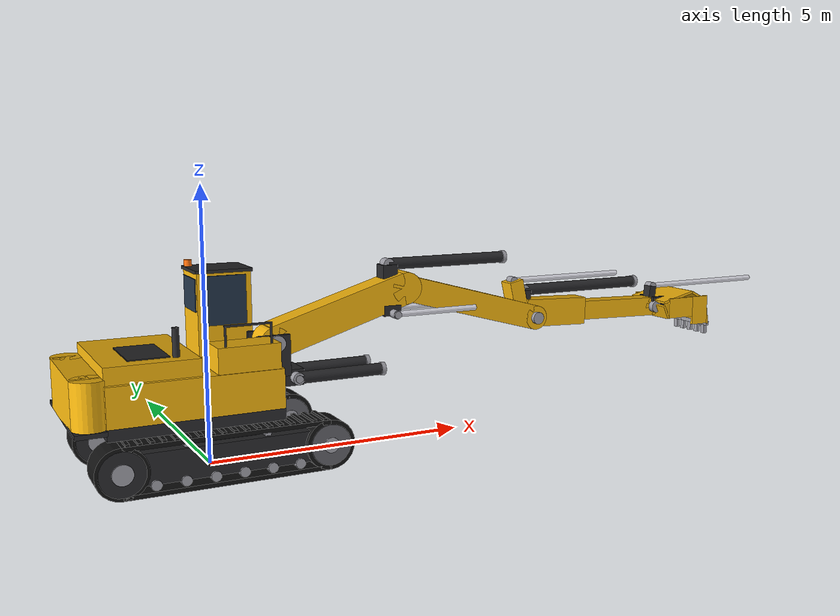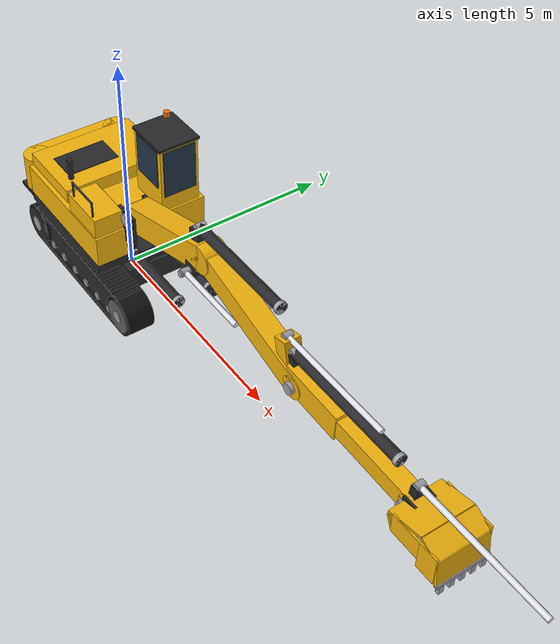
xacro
<?xml version="1.0"?>
<robot name="excavator" xmlns:xacro="http://www.ros.org/wiki/xacro">

  <!-- ===================== Parameters ===================== -->
  <xacro:property name="half_pi" value="${pi/2}"/>

  <!-- undercarriage -->
  <xacro:property name="frame_size_x" value="2.4"/>
  <xacro:property name="frame_size_y" value="1.4"/>
  <xacro:property name="frame_size_z" value="0.5"/>
  <xacro:property name="frame_z" value="0.65"/>
  <xacro:property name="frame_mass" value="6000"/>

  <xacro:property name="track_length" value="3.6"/>  <!-- straight section -->
  <xacro:property name="track_width" value="0.6"/>
  <xacro:property name="track_height" value="0.9"/>
  <xacro:property name="track_offset_y" value="1.05"/>
  <xacro:property name="track_mass" value="2000"/>
  <xacro:property name="belt_thickness" value="0.08"/>

  <xacro:property name="swing_z" value="1.0"/>

  <!-- upper structure (collision / inertia box) -->
  <xacro:property name="house_size_x" value="3.0"/>
  <xacro:property name="house_size_y" value="2.6"/>
  <xacro:property name="house_size_z" value="1.0"/>
  <xacro:property name="house_offset_x" value="-0.5"/>
  <xacro:property name="house_mass" value="7000"/>

  <!-- digging linkage -->
  <xacro:property name="boom_length" value="5.5"/>
  <xacro:property name="boom_width" value="0.5"/>
  <xacro:property name="boom_height" value="0.6"/>
  <xacro:property name="boom_knee_x" value="2.6"/>  <!-- bend of the boom -->
  <xacro:property name="boom_knee_z" value="0.8"/>
  <xacro:property name="boom_mass" value="1800"/>

  <xacro:property name="arm_length" value="3.0"/>
  <xacro:property name="arm_width" value="0.4"/>
  <xacro:property name="arm_height" value="0.45"/>
  <xacro:property name="arm_mass" value="900"/>

  <!-- Backhoe bucket: pins on the back (+Z side), opening faces -Z (towards the
       machine when the arm hangs down). Profile points are (x, z) in the bucket frame. -->
  <xacro:property name="bucket_length" value="1.2"/>   <!-- pivot to cutting edge along X -->
  <xacro:property name="bucket_edge_z" value="-0.42"/> <!-- cutting edge -->
  <xacro:property name="bucket_back_z" value="0.30"/>  <!-- outermost point of the back -->
  <xacro:property name="bucket_width" value="1.1"/>
  <xacro:property name="bucket_plate" value="0.05"/>
  <xacro:property name="bucket_mass" value="700"/>

  <!-- hydraulic cylinders: mounting pins (link frame, XZ) and lengths -->
  <xacro:property name="barrel_radius" value="0.11"/>
  <xacro:property name="rod_radius" value="0.055"/>
  <xacro:property name="boom_cyl_base" value="${[1.45, 0.55]}"/>    <!-- on upper_structure -->
  <xacro:property name="boom_cyl_tip" value="${[2.3, 0.35]}"/>      <!-- on boom -->
  <xacro:property name="boom_cyl_y" value="0.36"/>                  <!-- ± from boom centre -->
  <xacro:property name="boom_cyl_length" value="1.7"/>              <!-- pins 1.78 .. 2.88 m -->
  <xacro:property name="arm_cyl_base" value="${[2.3, 1.25]}"/>      <!-- on boom -->
  <xacro:property name="arm_cyl_tip" value="${[-0.45, 0.76]}"/>     <!-- on arm -->
  <xacro:property name="arm_cyl_length" value="2.55"/>              <!-- pins 2.63 .. 4.32 m -->
  <xacro:property name="bucket_cyl_base" value="${[-0.2, 0.55]}"/>  <!-- on arm -->
  <xacro:property name="bucket_cyl_tip" value="${[0.05, 0.42]}"/>   <!-- on bucket -->
  <xacro:property name="bucket_cyl_length" value="2.8"/>            <!-- pins 2.89 .. 3.67 m -->

  <!-- ===================== Materials ===================== -->
  <material name="yellow"><color rgba="0.96 0.71 0.05 1.0"/></material>
  <material name="dark_grey"><color rgba="0.16 0.16 0.17 1.0"/></material>
  <material name="grey"><color rgba="0.38 0.38 0.40 1.0"/></material>
  <material name="rubber"><color rgba="0.07 0.07 0.07 1.0"/></material>
  <material name="steel"><color rgba="0.62 0.62 0.65 1.0"/></material>
  <material name="chrome"><color rgba="0.88 0.88 0.92 1.0"/></material>
  <material name="glass"><color rgba="0.13 0.20 0.28 1.0"/></material>
  <material name="orange"><color rgba="1.00 0.45 0.05 1.0"/></material>

  <!-- ===================== Macros ===================== -->

  <!-- Solid box inertia, centred at xyz. -->
  <xacro:macro name="box_inertial" params="mass x y z xyz:='0 0 0'">
    <inertial>
      <origin xyz="${xyz}" rpy="0 0 0"/>
      <mass value="${mass}"/>
      <inertia ixx="${mass/12*(y*y + z*z)}" ixy="0" ixz="0"
               iyy="${mass/12*(x*x + z*z)}" iyz="0"
               izz="${mass/12*(x*x + y*y)}"/>
    </inertial>
  </xacro:macro>

  <xacro:macro name="box_collision" params="x y z xyz:='0 0 0'">
    <collision>
      <origin xyz="${xyz}" rpy="0 0 0"/>
      <geometry><box size="${x} ${y} ${z}"/></geometry>
    </collision>
  </xacro:macro>

  <xacro:macro name="box_visual" params="x y z material xyz:='0 0 0'">
    <visual>
      <origin xyz="${xyz}" rpy="0 0 0"/>
      <geometry><box size="${x} ${y} ${z}"/></geometry>
      <material name="${material}"/>
    </visual>
  </xacro:macro>

  <!-- Vertical cylinder (along Z). -->
  <xacro:macro name="post_visual" params="radius length material xyz">
    <visual>
      <origin xyz="${xyz}" rpy="0 0 0"/>
      <geometry><cylinder radius="${radius}" length="${length}"/></geometry>
      <material name="${material}"/>
    </visual>
  </xacro:macro>

  <!-- Cylinder lying along Y (pins, wheels, bosses). -->
  <xacro:macro name="pin_visual" params="radius length material xyz:='0 0 0'">
    <visual>
      <origin xyz="${xyz}" rpy="${half_pi} 0 0"/>
      <geometry><cylinder radius="${radius}" length="${length}"/></geometry>
      <material name="${material}"/>
    </visual>
  </xacro:macro>

  <!-- Box spanning two points in the XZ plane (w = Y size, h = thickness). -->
  <xacro:macro name="beam" params="x1 z1 x2 z2 w h material y:=0">
    <visual>
      <origin xyz="${(x1 + x2)/2} ${y} ${(z1 + z2)/2}" rpy="0 ${-atan2(z2 - z1, x2 - x1)} 0"/>
      <geometry><box size="${sqrt((x2 - x1)**2 + (z2 - z1)**2)} ${w} ${h}"/></geometry>
      <material name="${material}"/>
    </visual>
  </xacro:macro>

  <!-- Cylinder spanning two points in the XZ plane. -->
  <xacro:macro name="rod" params="x1 z1 x2 z2 radius material y:=0">
    <visual>
      <origin xyz="${(x1 + x2)/2} ${y} ${(z1 + z2)/2}" rpy="0 ${atan2(x2 - x1, z2 - z1)} 0"/>
      <geometry><cylinder radius="${radius}" length="${sqrt((x2 - x1)**2 + (z2 - z1)**2)}"/></geometry>
      <material name="${material}"/>
    </visual>
  </xacro:macro>

  <!-- Hydraulic cylinder between a pin on `base` and a pin on `tip` (pins are [x, z]).
       Each link's +X points at the opposite pin; TF comes from excavator_hydraulics. -->
  <xacro:macro name="hydraulic_cylinder" params="name base base_pin tip tip_pin length base_y:=0 tip_y:=0">
    <link name="${name}_barrel">
      <visual>
        <origin xyz="${length/2} 0 0" rpy="0 ${half_pi} 0"/>
        <geometry><cylinder radius="${barrel_radius}" length="${length}"/></geometry>
        <material name="dark_grey"/>
      </visual>
      <visual>
        <origin xyz="${length - 0.04} 0 0" rpy="0 ${half_pi} 0"/>
        <geometry><cylinder radius="${barrel_radius + 0.015}" length="0.08"/></geometry>
        <material name="steel"/>
      </visual>
      <xacro:pin_visual radius="${barrel_radius}" length="0.2" material="steel"/>
    </link>
    <joint name="${name}_barrel_joint" type="floating">
      <parent link="${base}"/>
      <child link="${name}_barrel"/>
      <origin xyz="${base_pin[0]} ${base_y} ${base_pin[1]}" rpy="0 0 0"/>
    </joint>

    <link name="${name}_rod">
      <visual>
        <origin xyz="${length/2} 0 0" rpy="0 ${half_pi} 0"/>
        <geometry><cylinder radius="${rod_radius}" length="${length}"/></geometry>
        <material name="chrome"/>
      </visual>
      <xacro:pin_visual radius="0.08" length="0.18" material="steel"/>
    </link>
    <joint name="${name}_rod_joint" type="floating">
      <parent link="${tip}"/>
      <child link="${name}_rod"/>
      <origin xyz="${tip_pin[0]} ${tip_y} ${tip_pin[1]}" rpy="0 0 0"/>
    </joint>
  </xacro:macro>

  <!-- n boxes in a row along X, starting at x0 with spacing dx. -->
  <xacro:macro name="box_row" params="n x0 dx sx sy sz z material">
    <xacro:if value="${n > 0}">
      <xacro:box_visual x="${sx}" y="${sy}" z="${sz}" material="${material}" xyz="${x0} 0 ${z}"/>
      <xacro:box_row n="${n - 1}" x0="${x0 + dx}" dx="${dx}" sx="${sx}" sy="${sy}" sz="${sz}"
                     z="${z}" material="${material}"/>
    </xacro:if>
  </xacro:macro>

  <!-- n Y-axis cylinders in a row along X (track rollers). -->
  <xacro:macro name="roller_row" params="n x0 dx radius length z">
    <xacro:if value="${n > 0}">
      <xacro:pin_visual radius="${radius}" length="${length}" material="steel" xyz="${x0} 0 ${z}"/>
      <xacro:roller_row n="${n - 1}" x0="${x0 + dx}" dx="${dx}" radius="${radius}"
                        length="${length}" z="${z}"/>
    </xacro:if>
  </xacro:macro>

  <!-- Track: belt with shoes, sprocket, idler and rollers. side = left | right, reflect = 1 | -1 -->
  <xacro:macro name="track" params="side reflect">
    <xacro:property name="r" value="${track_height/2}"/>
    <link name="${side}_track">
      <!-- belt -->
      <xacro:box_visual x="${track_length}" y="${track_width}" z="${belt_thickness}" material="rubber"
                        xyz="0 0 ${r - belt_thickness/2}"/>
      <xacro:box_visual x="${track_length}" y="${track_width}" z="${belt_thickness}" material="rubber"
                        xyz="0 0 ${-r + belt_thickness/2}"/>
      <xacro:pin_visual radius="${r}" length="${track_width}" material="rubber" xyz="${track_length/2} 0 0"/>
      <xacro:pin_visual radius="${r}" length="${track_width}" material="rubber" xyz="${-track_length/2} 0 0"/>
      <!-- track shoes (grousers) on top run -->
      <xacro:box_row n="18" x0="${-track_length/2 + 0.1}" dx="0.2" sx="0.07" sy="${track_width}" sz="0.04"
                     z="${r + 0.02}" material="rubber"/>
      <!-- idler (front) and drive sprocket (rear) -->
      <xacro:pin_visual radius="${r - 0.08}" length="${track_width + 0.04}" material="grey"
                        xyz="${track_length/2} 0 0"/>
      <xacro:pin_visual radius="${r - 0.06}" length="${track_width + 0.04}" material="dark_grey"
                        xyz="${-track_length/2} 0 0"/>
      <xacro:pin_visual radius="0.14" length="${track_width + 0.08}" material="steel"
                        xyz="${track_length/2} 0 0"/>
      <xacro:pin_visual radius="0.18" length="${track_width + 0.08}" material="steel"
                        xyz="${-track_length/2} 0 0"/>
      <!-- track frame -->
      <xacro:box_visual x="${track_length - 0.1}" y="${track_width - 0.16}" z="0.55" material="dark_grey"/>
      <!-- bottom and carrier rollers -->
      <xacro:roller_row n="6" x0="-1.25" dx="0.5" radius="0.09" length="${track_width - 0.1}"
                        z="${-r + belt_thickness + 0.09}"/>
      <xacro:roller_row n="2" x0="-0.7" dx="1.4" radius="0.06" length="0.3"
                        z="${r - belt_thickness - 0.06}"/>

      <xacro:box_collision x="${track_length + track_height}" y="${track_width}" z="${track_height}"/>
      <xacro:box_inertial mass="${track_mass}"
                          x="${track_length + track_height}" y="${track_width}" z="${track_height}"/>
    </link>

    <joint name="${side}_track_joint" type="fixed">
      <parent link="base_link"/>
      <child link="${side}_track"/>
      <origin xyz="0 ${reflect*track_offset_y} ${track_height/2}" rpy="0 0 0"/>
    </joint>
  </xacro:macro>

  <!-- Revolute pitch joint; positive angle raises the child link. -->
  <xacro:macro name="pitch_joint" params="name parent child xyz lower upper effort velocity">
    <joint name="${name}" type="revolute">
      <parent link="${parent}"/>
      <child link="${child}"/>
      <origin xyz="${xyz}" rpy="0 0 0"/>
      <axis xyz="0 -1 0"/>
      <limit lower="${lower}" upper="${upper}" effort="${effort}" velocity="${velocity}"/>
    </joint>
  </xacro:macro>

  <!-- Bucket tooth at lateral position y, pointing out of the cutting edge (-Z). -->
  <xacro:macro name="tooth" params="y">
    <xacro:box_visual x="0.08" y="0.1" z="0.2" material="steel"
                      xyz="${bucket_length} ${y} ${bucket_edge_z - 0.12}"/>
  </xacro:macro>

  <!-- ===================== Undercarriage ===================== -->
  <!-- Inertia-free root link (KDL does not support inertia on the root). -->
  <link name="base_footprint"/>

  <joint name="base_footprint_joint" type="fixed">
    <parent link="base_footprint"/>
    <child link="base_link"/>
    <origin xyz="0 0 0" rpy="0 0 0"/>
  </joint>

  <link name="base_link">
    <!-- centre body and cross members to the tracks -->
    <xacro:box_visual x="${frame_size_x}" y="${frame_size_y}" z="${frame_size_z}"
                      material="dark_grey" xyz="0 0 ${frame_z}"/>
    <xacro:box_visual x="1.2" y="${2*track_offset_y}" z="0.3" material="dark_grey" xyz="0 0 0.6"/>
    <!-- slewing ring -->
    <xacro:post_visual radius="0.85" length="0.1" material="grey" xyz="0 0 0.95"/>

    <xacro:box_collision x="${frame_size_x}" y="${frame_size_y}" z="${frame_size_z}" xyz="0 0 ${frame_z}"/>
    <xacro:box_inertial mass="${frame_mass}" x="${frame_size_x}" y="${frame_size_y}" z="${frame_size_z}"
                        xyz="0 0 ${frame_z}"/>
  </link>

  <xacro:track side="left" reflect="1"/>
  <xacro:track side="right" reflect="-1"/>

  <!-- ===================== Upper structure (house) ===================== -->
  <link name="upper_structure">
    <!-- deck skirt and body -->
    <xacro:box_visual x="${house_size_x}" y="${house_size_y}" z="0.2" material="dark_grey"
                      xyz="${house_offset_x} 0 0.1"/>
    <xacro:box_visual x="${house_size_x}" y="${house_size_y}" z="0.7" material="yellow"
                      xyz="${house_offset_x} 0 0.55"/>
    <!-- engine hood with vent -->
    <xacro:box_visual x="1.6" y="2.4" z="0.3" material="yellow" xyz="-1.2 0 1.05"/>
    <xacro:box_visual x="0.7" y="1.2" z="0.02" material="dark_grey" xyz="-1.2 -0.3 1.21"/>
    <!-- counterweight, rounded at the rear corners -->
    <xacro:box_visual x="0.5" y="2.0" z="0.9" material="yellow" xyz="-2.25 0 0.55"/>
    <xacro:post_visual radius="0.3" length="0.9" material="yellow" xyz="-2.2 1.0 0.55"/>
    <xacro:post_visual radius="0.3" length="0.9" material="yellow" xyz="-2.2 -1.0 0.55"/>
    <xacro:box_visual x="0.52" y="2.62" z="0.08" material="dark_grey" xyz="-2.24 0 0.14"/>
    <!-- exhaust stack -->
    <xacro:post_visual radius="0.06" length="0.5" material="dark_grey" xyz="-0.75 -0.9 1.45"/>

    <!-- cab -->
    <xacro:box_visual x="1.0" y="0.9" z="1.5" material="yellow" xyz="0.45 0.75 1.65"/>
    <xacro:box_visual x="0.02" y="0.76" z="1.1" material="glass" xyz="0.96 0.75 1.8"/>
    <xacro:box_visual x="0.8" y="0.02" z="0.9" material="glass" xyz="0.45 1.21 1.9"/>
    <xacro:box_visual x="0.8" y="0.02" z="0.9" material="glass" xyz="0.45 0.29 1.9"/>
    <xacro:box_visual x="0.02" y="0.76" z="0.6" material="glass" xyz="-0.06 0.75 2.0"/>
    <xacro:box_visual x="1.06" y="0.96" z="0.06" material="dark_grey" xyz="0.45 0.75 2.43"/>
    <xacro:post_visual radius="0.07" length="0.12" material="orange" xyz="0.0 1.05 2.52"/>

    <!-- tool box / fuel tank with handrail, front right -->
    <xacro:box_visual x="1.1" y="0.65" z="0.45" material="yellow" xyz="0.4 -0.95 1.125"/>
    <xacro:post_visual radius="0.02" length="0.35" material="dark_grey" xyz="0.0 -1.22 1.525"/>
    <xacro:post_visual radius="0.02" length="0.35" material="dark_grey" xyz="0.8 -1.22 1.525"/>
    <xacro:rod x1="-0.02" z1="1.7" x2="0.82" z2="1.7" radius="0.02" material="dark_grey" y="-1.22"/>

    <!-- boom foot brackets -->
    <xacro:box_visual x="0.6" y="0.08" z="0.75" material="dark_grey" xyz="1.05 -0.01 0.975"/>
    <xacro:box_visual x="0.6" y="0.08" z="0.75" material="dark_grey" xyz="1.05 -0.59 0.975"/>
    <!-- boom cylinder base bracket -->
    <xacro:box_visual x="0.6" y="0.6" z="0.3" material="dark_grey" xyz="1.3 -0.3 0.55"/>
    <xacro:pin_visual radius="0.07" length="${2*boom_cyl_y + 0.25}" material="steel"
                      xyz="${boom_cyl_base[0]} -0.3 ${boom_cyl_base[1]}"/>

    <xacro:box_collision x="${house_size_x}" y="${house_size_y}" z="${house_size_z}"
                         xyz="${house_offset_x} 0 ${house_size_z/2}"/>
    <xacro:box_inertial mass="${house_mass}" x="${house_size_x}" y="${house_size_y}" z="${house_size_z}"
                        xyz="${house_offset_x} 0 ${house_size_z/2}"/>
  </link>

  <!-- continuous: the upper structure can swing all the way round -->
  <joint name="swing_joint" type="continuous">
    <parent link="base_link"/>
    <child link="upper_structure"/>
    <origin xyz="0 0 ${swing_z}" rpy="0 0 0"/>
    <axis xyz="0 0 1"/>
    <limit effort="50000" velocity="1.0"/>
  </joint>

  <!-- ===================== Boom ===================== -->
  <link name="boom">
    <!-- bent (banana) boom: foot → knee → tip -->
    <xacro:beam x1="0" z1="0" x2="${boom_knee_x}" z2="${boom_knee_z}"
                w="${boom_width}" h="${boom_height}" material="yellow"/>
    <xacro:beam x1="${boom_knee_x}" z1="${boom_knee_z}" x2="${boom_length}" z2="0"
                w="${boom_width - 0.05}" h="${boom_height - 0.12}" material="yellow"/>
    <xacro:pin_visual radius="0.3" length="${boom_width}" material="yellow"
                      xyz="${boom_knee_x} 0 ${boom_knee_z}"/>
    <xacro:pin_visual radius="0.28" length="${boom_width}" material="yellow"/>
    <xacro:pin_visual radius="0.15" length="0.75" material="steel"/>
    <xacro:pin_visual radius="0.24" length="${boom_width - 0.05}" material="yellow"
                      xyz="${boom_length} 0 0"/>
    <!-- boom cylinder tip lug and pin -->
    <xacro:box_visual x="0.35" y="${boom_width}" z="0.2" material="dark_grey"
                      xyz="${boom_cyl_tip[0]} 0 ${boom_cyl_tip[1] + 0.05}"/>
    <xacro:pin_visual radius="0.07" length="${2*boom_cyl_y + 0.25}" material="steel"
                      xyz="${boom_cyl_tip[0]} 0 ${boom_cyl_tip[1]}"/>
    <!-- arm cylinder base lug on top -->
    <xacro:box_visual x="0.3" y="0.3" z="0.25" material="dark_grey"
                      xyz="${arm_cyl_base[0]} 0 ${arm_cyl_base[1] - 0.13}"/>

    <xacro:box_collision x="${boom_length}" y="${boom_width}" z="${boom_height}" xyz="${boom_length/2} 0 0"/>
    <xacro:box_inertial mass="${boom_mass}" x="${boom_length}" y="${boom_width}" z="${boom_height}"
                        xyz="${boom_length/2} 0 0"/>
  </link>

  <xacro:pitch_joint name="boom_joint" parent="upper_structure" child="boom"
                     xyz="1.1 -0.3 1.2" lower="-0.6" upper="1.1" effort="200000" velocity="0.5"/>

  <!-- ===================== Arm (stick) ===================== -->
  <link name="arm">
    <!-- tapered stick with a tail above the pivot for the arm cylinder -->
    <xacro:beam x1="-0.2" z1="0.1" x2="1.2" z2="0.05" w="${arm_width}" h="0.55" material="yellow"/>
    <xacro:beam x1="1.2" z1="0.05" x2="${arm_length}" z2="0" w="${arm_width - 0.04}" h="0.38" material="yellow"/>
    <xacro:beam x1="-0.3" z1="0.1" x2="-0.45" z2="0.76" w="0.35" h="0.3" material="yellow"/>
    <xacro:pin_visual radius="0.12" length="0.62" material="steel"/>
    <xacro:pin_visual radius="0.19" length="${arm_width - 0.04}" material="yellow" xyz="${arm_length} 0 0"/>
    <!-- bucket cylinder base lug -->
    <xacro:box_visual x="0.25" y="0.25" z="0.2" material="dark_grey"
                      xyz="${bucket_cyl_base[0]} 0 ${bucket_cyl_base[1] - 0.1}"/>

    <xacro:box_collision x="${arm_length}" y="${arm_width}" z="${arm_height}" xyz="${arm_length/2} 0 0"/>
    <xacro:box_inertial mass="${arm_mass}" x="${arm_length}" y="${arm_width}" z="${arm_height}"
                        xyz="${arm_length/2} 0 0"/>
  </link>

  <xacro:pitch_joint name="arm_joint" parent="boom" child="arm"
                     xyz="${boom_length} 0 0" lower="-2.6" upper="0.3" effort="150000" velocity="0.6"/>

  <!-- ===================== Bucket ===================== -->
  <link name="bucket">
    <!-- mounting lugs (ears) on the back and pivot pin -->
    <xacro:box_visual x="0.3" y="0.05" z="0.25" material="dark_grey" xyz="0.1 0.2 0.08"/>
    <xacro:box_visual x="0.3" y="0.05" z="0.25" material="dark_grey" xyz="0.1 -0.2 0.08"/>
    <xacro:pin_visual radius="0.12" length="0.6" material="steel"/>
    <!-- bucket cylinder tip lug, on the back -->
    <xacro:beam x1="0.0" z1="0.0" x2="${bucket_cyl_tip[0]}" z2="${bucket_cyl_tip[1]}"
                w="0.2" h="0.16" material="dark_grey"/>
    <!-- shell: top wall at the pins → back → heel → floor to the cutting edge -->
    <xacro:beam x1="0.0" z1="0.05" x2="0.12" z2="-0.22" w="${bucket_width}" h="${bucket_plate}" material="yellow"/>
    <xacro:beam x1="0.0" z1="0.12" x2="0.75" z2="${bucket_back_z}" w="${bucket_width}" h="${bucket_plate}"
                material="yellow"/>
    <xacro:beam x1="0.75" z1="${bucket_back_z}" x2="1.12" z2="0.1" w="${bucket_width}" h="${bucket_plate}"
                material="yellow"/>
    <xacro:beam x1="1.12" z1="0.1" x2="${bucket_length}" z2="${bucket_edge_z}" w="${bucket_width}"
                h="${bucket_plate}" material="yellow"/>
    <!-- side plates -->
    <xacro:box_visual x="0.63" y="0.04" z="0.42" material="yellow" xyz="0.435 ${bucket_width/2} -0.01"/>
    <xacro:box_visual x="0.63" y="0.04" z="0.42" material="yellow" xyz="0.435 ${-bucket_width/2} -0.01"/>
    <xacro:box_visual x="0.4" y="0.04" z="0.6" material="yellow" xyz="0.95 ${bucket_width/2} -0.1"/>
    <xacro:box_visual x="0.4" y="0.04" z="0.6" material="yellow" xyz="0.95 ${-bucket_width/2} -0.1"/>
    <!-- cutting edge and teeth -->
    <xacro:box_visual x="0.08" y="${bucket_width}" z="0.08" material="steel"
                      xyz="${bucket_length} 0 ${bucket_edge_z}"/>
    <xacro:tooth y="-0.44"/>
    <xacro:tooth y="-0.22"/>
    <xacro:tooth y="0"/>
    <xacro:tooth y="0.22"/>
    <xacro:tooth y="0.44"/>

    <xacro:box_collision x="${bucket_length}" y="${bucket_width}" z="${bucket_back_z - bucket_edge_z}"
                         xyz="${bucket_length/2} 0 ${(bucket_back_z + bucket_edge_z)/2}"/>
    <xacro:box_inertial mass="${bucket_mass}" x="${bucket_length}" y="${bucket_width}"
                        z="${bucket_back_z - bucket_edge_z}"
                        xyz="${bucket_length/2} 0 ${(bucket_back_z + bucket_edge_z)/2}"/>
  </link>

  <xacro:pitch_joint name="bucket_joint" parent="arm" child="bucket"
                     xyz="${arm_length} 0 0" lower="-2.2" upper="1.0" effort="100000" velocity="0.8"/>

  <!-- Tip of the middle tooth: the point bucket-tip control moves. -->
  <link name="bucket_tip"/>
  <joint name="bucket_tip_joint" type="fixed">
    <parent link="bucket"/>
    <child link="bucket_tip"/>
    <origin xyz="${bucket_length} 0 ${bucket_edge_z - 0.22}" rpy="0 0 0"/>
  </joint>

  <!-- ===================== Hydraulic cylinders ===================== -->
  <!-- boom joint is at y = -0.3 in upper_structure, so boom cylinder bases are offset to match -->
  <xacro:hydraulic_cylinder name="boom_cyl_left" base="upper_structure" base_pin="${boom_cyl_base}"
                            tip="boom" tip_pin="${boom_cyl_tip}" length="${boom_cyl_length}"
                            base_y="${-0.3 + boom_cyl_y}" tip_y="${boom_cyl_y}"/>
  <xacro:hydraulic_cylinder name="boom_cyl_right" base="upper_structure" base_pin="${boom_cyl_base}"
                            tip="boom" tip_pin="${boom_cyl_tip}" length="${boom_cyl_length}"
                            base_y="${-0.3 - boom_cyl_y}" tip_y="${-boom_cyl_y}"/>
  <xacro:hydraulic_cylinder name="arm_cyl" base="boom" base_pin="${arm_cyl_base}"
                            tip="arm" tip_pin="${arm_cyl_tip}" length="${arm_cyl_length}"/>
  <xacro:hydraulic_cylinder name="bucket_cyl" base="arm" base_pin="${bucket_cyl_base}"
                            tip="bucket" tip_pin="${bucket_cyl_tip}" length="${bucket_cyl_length}"/>

</robot>
